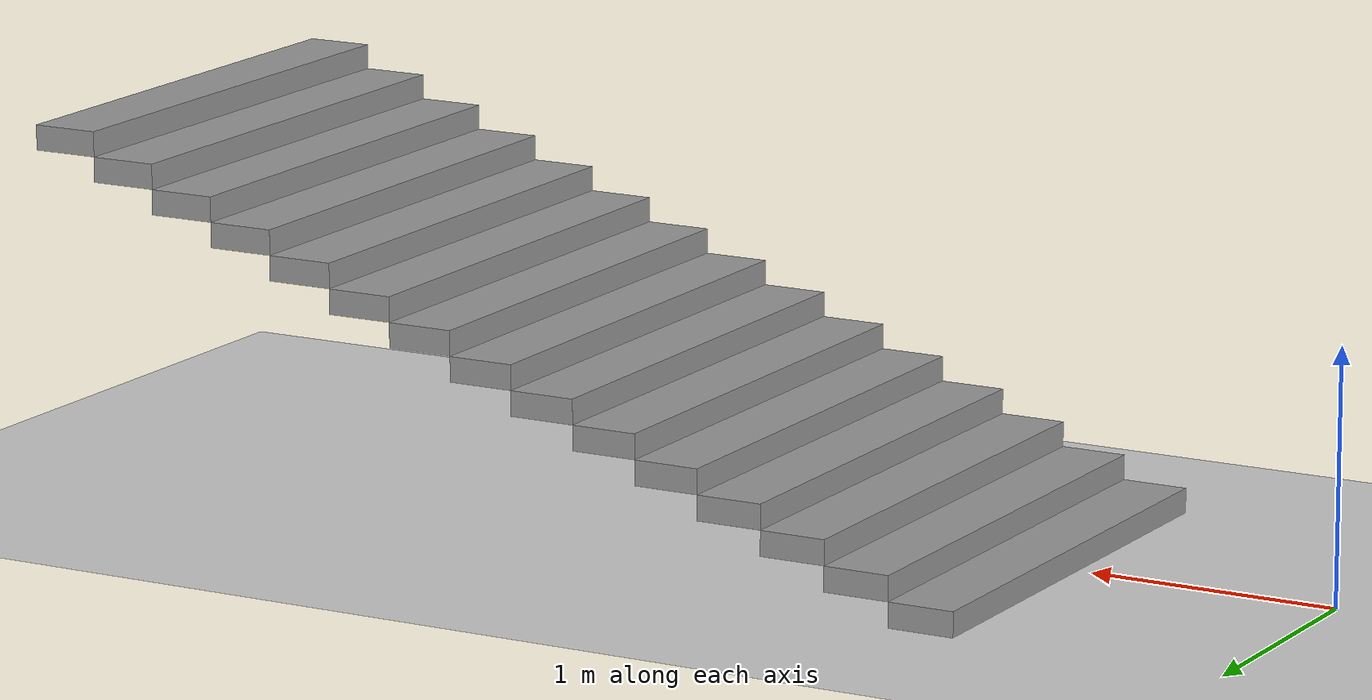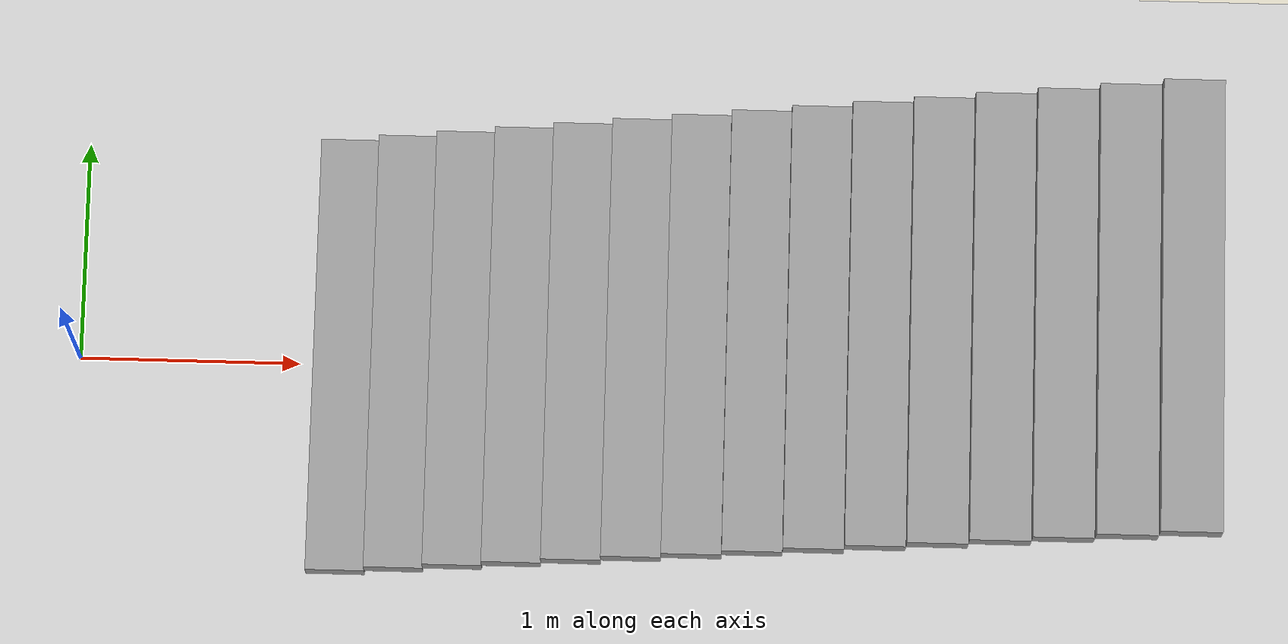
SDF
<sdf version="1.7">
 <world name="default">
  <light name="sun" type="directional">
   <pose>0 0 10 0 -0 0</pose>
   <diffuse>0.8 0.8 0.8 1</diffuse>
   <specular>0.2 0.2 0.2 1</specular>
   <attenuation>
    <range>1000</range>
    <constant>0.9</constant>
    <linear>0.01</linear>
    <quadratic>0.001</quadratic>
   </attenuation>
   <direction>-0.5 0.1 -0.9</direction>
   <spot><inner_angle>0</inner_angle><outer_angle>0</outer_angle><falloff>0</falloff></spot>
  </light>
  <model name="ground_plane">
   <static>1</static>
   <link name="link">
    <collision name="collision">
     <geometry><plane><normal>0 0 1</normal><size>100 100</size></plane></geometry>
     <surface>
      <contact><collide_bitmask>65535</collide_bitmask></contact>
      <friction><ode><mu>100</mu><mu2>50</mu2></ode></friction>
     </surface>
    </collision>
    <visual name="visual">
     <cast_shadows>0</cast_shadows>
     <geometry><plane><normal>0 0 1</normal><size>100 100</size></plane></geometry>
     <material>
      <script><uri>file://media/materials/scripts/gazebo.material</uri><name>Gazebo/Grey</name></script>
     </material>
    </visual>
   </link>
  </model>
  <gravity>0 0 -9.8</gravity>
  <magnetic_field>6e-06 2.3e-05 -4.2e-05</magnetic_field>
  <atmosphere type="adiabatic"/>
  <physics type="ode">
   <max_step_size>0.001</max_step_size>
   <real_time_factor>1</real_time_factor>
   <real_time_update_rate>1000</real_time_update_rate>
  </physics>
  <scene><ambient>0.4 0.4 0.4 1</ambient><background>0.7 0.7 0.7 1</background><shadows>1</shadows></scene>
  <spherical_coordinates>
   <surface_model>EARTH_WGS84</surface_model>
   <latitude_deg>0</latitude_deg>
   <longitude_deg>0</longitude_deg>
   <elevation>0</elevation>
   <heading_deg>0</heading_deg>
  </spherical_coordinates>
  <model name="stair5">
   <pose>2.53075 0.03475 0 0 -0 0</pose>
   <link name="Stairs_0">
    <visual name="Stairs_0_Visual_0">
     <pose>-1.33592 -0 0.05 0 -0 1.5708</pose>
     <geometry><box><size>2 0.266667 0.1</size></box></geometry>
     <material>
      <script><uri>file://media/materials/scripts/gazebo.material</uri><name>Gazebo/Grey</name></script>
      <ambient>1 1 1 1</ambient>
     </material>
     <meta><layer>0</layer></meta>
    </visual>
    <collision name="Stairs_0_Collision_0">
     <geometry><box><size>2 0.266667 0.1</size></box></geometry>
     <pose>-1.33592 -0 0.05 0 -0 1.5708</pose>
    </collision>
    <visual name="Stairs_0_Visual_1">
     <pose>-1.06925 -0 0.15 0 -0 1.5708</pose>
     <geometry><box><size>2 0.266667 0.1</size></box></geometry>
     <material>
      <script><uri>file://media/materials/scripts/gazebo.material</uri><name>Gazebo/Grey</name></script>
      <ambient>1 1 1 1</ambient>
     </material>
     <meta><layer>0</layer></meta>
    </visual>
    <collision name="Stairs_0_Collision_1">
     <geometry><box><size>2 0.266667 0.1</size></box></geometry>
     <pose>-1.06925 -0 0.15 0 -0 1.5708</pose>
    </collision>
    <visual name="Stairs_0_Visual_2">
     <pose>-0.802584 -0 0.25 0 -0 1.5708</pose>
     <geometry><box><size>2 0.266667 0.1</size></box></geometry>
     <material>
      <script><uri>file://media/materials/scripts/gazebo.material</uri><name>Gazebo/Grey</name></script>
      <ambient>1 1 1 1</ambient>
     </material>
     <meta><layer>0</layer></meta>
    </visual>
    <collision name="Stairs_0_Collision_2">
     <geometry><box><size>2 0.266667 0.1</size></box></geometry>
     <pose>-0.802584 -0 0.25 0 -0 1.5708</pose>
    </collision>
    <visual name="Stairs_0_Visual_3">
     <pose>-0.535917 -0 0.35 0 -0 1.5708</pose>
     <geometry><box><size>2 0.266667 0.1</size></box></geometry>
     <material>
      <script><uri>file://media/materials/scripts/gazebo.material</uri><name>Gazebo/Grey</name></script>
      <ambient>1 1 1 1</ambient>
     </material>
     <meta><layer>0</layer></meta>
    </visual>
    <collision name="Stairs_0_Collision_3">
     <geometry><box><size>2 0.266667 0.1</size></box></geometry>
     <pose>-0.535917 -0 0.35 0 -0 1.5708</pose>
    </collision>
    <visual name="Stairs_0_Visual_4">
     <pose>-0.26925 -0 0.45 0 -0 1.5708</pose>
     <geometry><box><size>2 0.266667 0.1</size></box></geometry>
     <material>
      <script><uri>file://media/materials/scripts/gazebo.material</uri><name>Gazebo/Grey</name></script>
      <ambient>1 1 1 1</ambient>
     </material>
     <meta><layer>0</layer></meta>
    </visual>
    <collision name="Stairs_0_Collision_4">
     <geometry><box><size>2 0.266667 0.1</size></box></geometry>
     <pose>-0.26925 -0 0.45 0 -0 1.5708</pose>
    </collision>
    <visual name="Stairs_0_Visual_5">
     <pose>-0.002584 -0 0.55 0 -0 1.5708</pose>
     <geometry><box><size>2 0.266667 0.1</size></box></geometry>
     <material>
      <script><uri>file://media/materials/scripts/gazebo.material</uri><name>Gazebo/Grey</name></script>
      <ambient>1 1 1 1</ambient>
     </material>
     <meta><layer>0</layer></meta>
    </visual>
    <collision name="Stairs_0_Collision_5">
     <geometry><box><size>2 0.266667 0.1</size></box></geometry>
     <pose>-0.002584 -0 0.55 0 -0 1.5708</pose>
    </collision>
    <visual name="Stairs_0_Visual_6">
     <pose>0.264083 -0 0.65 0 -0 1.5708</pose>
     <geometry><box><size>2 0.266667 0.1</size></box></geometry>
     <material>
      <script><uri>file://media/materials/scripts/gazebo.material</uri><name>Gazebo/Grey</name></script>
      <ambient>1 1 1 1</ambient>
     </material>
     <meta><layer>0</layer></meta>
    </visual>
    <collision name="Stairs_0_Collision_6">
     <geometry><box><size>2 0.266667 0.1</size></box></geometry>
     <pose>0.264083 -0 0.65 0 -0 1.5708</pose>
    </collision>
    <visual name="Stairs_0_Visual_7">
     <pose>0.53075 0 0.75 0 -0 1.5708</pose>
     <geometry><box><size>2 0.266667 0.1</size></box></geometry>
     <material>
      <script><uri>file://media/materials/scripts/gazebo.material</uri><name>Gazebo/Grey</name></script>
      <ambient>1 1 1 1</ambient>
     </material>
     <meta><layer>0</layer></meta>
    </visual>
    <collision name="Stairs_0_Collision_7">
     <geometry><box><size>2 0.266667 0.1</size></box></geometry>
     <pose>0.53075 0 0.75 0 -0 1.5708</pose>
    </collision>
    <visual name="Stairs_0_Visual_8">
     <pose>0.797416 0 0.85 0 -0 1.5708</pose>
     <geometry><box><size>2 0.266667 0.1</size></box></geometry>
     <material>
      <script><uri>file://media/materials/scripts/gazebo.material</uri><name>Gazebo/Grey</name></script>
      <ambient>1 1 1 1</ambient>
     </material>
     <meta><layer>0</layer></meta>
    </visual>
    <collision name="Stairs_0_Collision_8">
     <geometry><box><size>2 0.266667 0.1</size></box></geometry>
     <pose>0.797416 0 0.85 0 -0 1.5708</pose>
    </collision>
    <visual name="Stairs_0_Visual_9">
     <pose>1.06408 0 0.95 0 -0 1.5708</pose>
     <geometry><box><size>2 0.266667 0.1</size></box></geometry>
     <material>
      <script><uri>file://media/materials/scripts/gazebo.material</uri><name>Gazebo/Grey</name></script>
      <ambient>1 1 1 1</ambient>
     </material>
     <meta><layer>0</layer></meta>
    </visual>
    <collision name="Stairs_0_Collision_9">
     <geometry><box><size>2 0.266667 0.1</size></box></geometry>
     <pose>1.06408 0 0.95 0 -0 1.5708</pose>
    </collision>
    <visual name="Stairs_0_Visual_10">
     <pose>1.33075 0 1.05 0 -0 1.5708</pose>
     <geometry><box><size>2 0.266667 0.1</size></box></geometry>
     <material>
      <script><uri>file://media/materials/scripts/gazebo.material</uri><name>Gazebo/Grey</name></script>
      <ambient>1 1 1 1</ambient>
     </material>
     <meta><layer>0</layer></meta>
    </visual>
    <collision name="Stairs_0_Collision_10">
     <geometry><box><size>2 0.266667 0.1</size></box></geometry>
     <pose>1.33075 0 1.05 0 -0 1.5708</pose>
    </collision>
    <visual name="Stairs_0_Visual_11">
     <pose>1.59742 0 1.15 0 -0 1.5708</pose>
     <geometry><box><size>2 0.266667 0.1</size></box></geometry>
     <material>
      <script><uri>file://media/materials/scripts/gazebo.material</uri><name>Gazebo/Grey</name></script>
      <ambient>1 1 1 1</ambient>
     </material>
     <meta><layer>0</layer></meta>
    </visual>
    <collision name="Stairs_0_Collision_11">
     <geometry><box><size>2 0.266667 0.1</size></box></geometry>
     <pose>1.59742 0 1.15 0 -0 1.5708</pose>
    </collision>
    <visual name="Stairs_0_Visual_12">
     <pose>1.86408 0 1.25 0 -0 1.5708</pose>
     <geometry><box><size>2 0.266667 0.1</size></box></geometry>
     <material>
      <script><uri>file://media/materials/scripts/gazebo.material</uri><name>Gazebo/Grey</name></script>
      <ambient>1 1 1 1</ambient>
     </material>
     <meta><layer>0</layer></meta>
    </visual>
    <collision name="Stairs_0_Collision_12">
     <geometry><box><size>2 0.266667 0.1</size></box></geometry>
     <pose>1.86408 0 1.25 0 -0 1.5708</pose>
    </collision>
    <visual name="Stairs_0_Visual_13">
     <pose>2.13075 0 1.35 0 -0 1.5708</pose>
     <geometry><box><size>2 0.266667 0.1</size></box></geometry>
     <material>
      <script><uri>file://media/materials/scripts/gazebo.material</uri><name>Gazebo/Grey</name></script>
      <ambient>1 1 1 1</ambient>
     </material>
     <meta><layer>0</layer></meta>
    </visual>
    <collision name="Stairs_0_Collision_13">
     <geometry><box><size>2 0.266667 0.1</size></box></geometry>
     <pose>2.13075 0 1.35 0 -0 1.5708</pose>
    </collision>
    <visual name="Stairs_0_Visual_14">
     <pose>2.39742 0 1.45 0 -0 1.5708</pose>
     <geometry><box><size>2 0.266667 0.1</size></box></geometry>
     <material>
      <script><uri>file://media/materials/scripts/gazebo.material</uri><name>Gazebo/Grey</name></script>
      <ambient>1 1 1 1</ambient>
     </material>
     <meta><layer>0</layer></meta>
    </visual>
    <collision name="Stairs_0_Collision_14">
     <geometry><box><size>2 0.266667 0.1</size></box></geometry>
     <pose>2.39742 0 1.45 0 -0 1.5708</pose>
    </collision>
   </link>
   <static>1</static>
  </model>
 </world>
</sdf>
